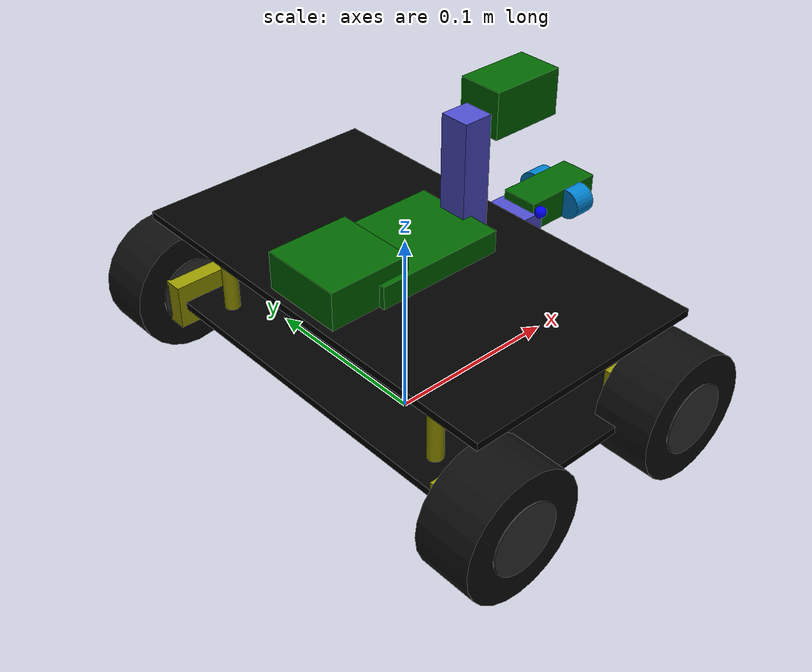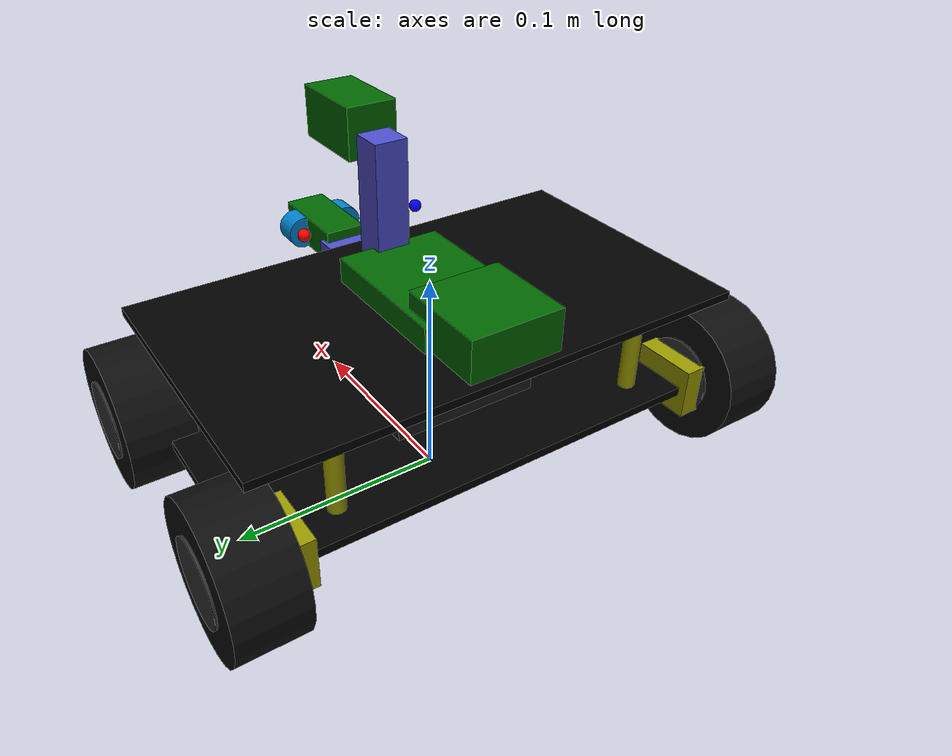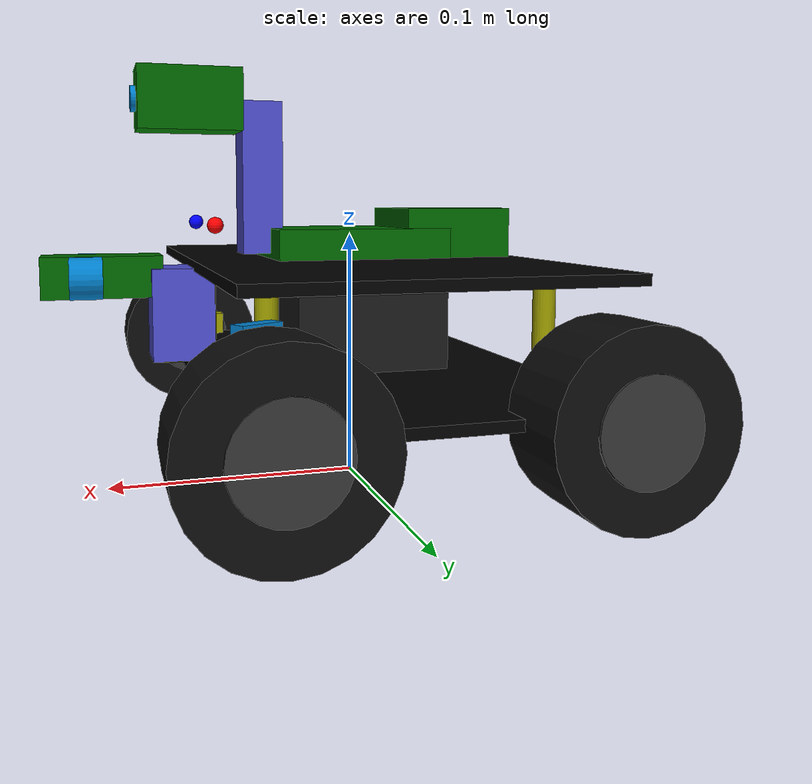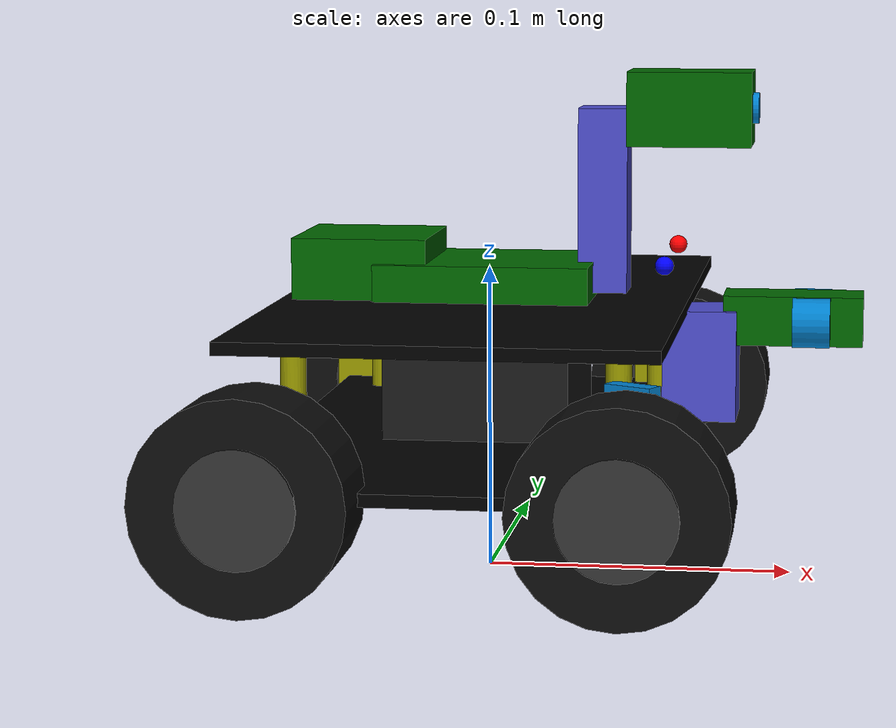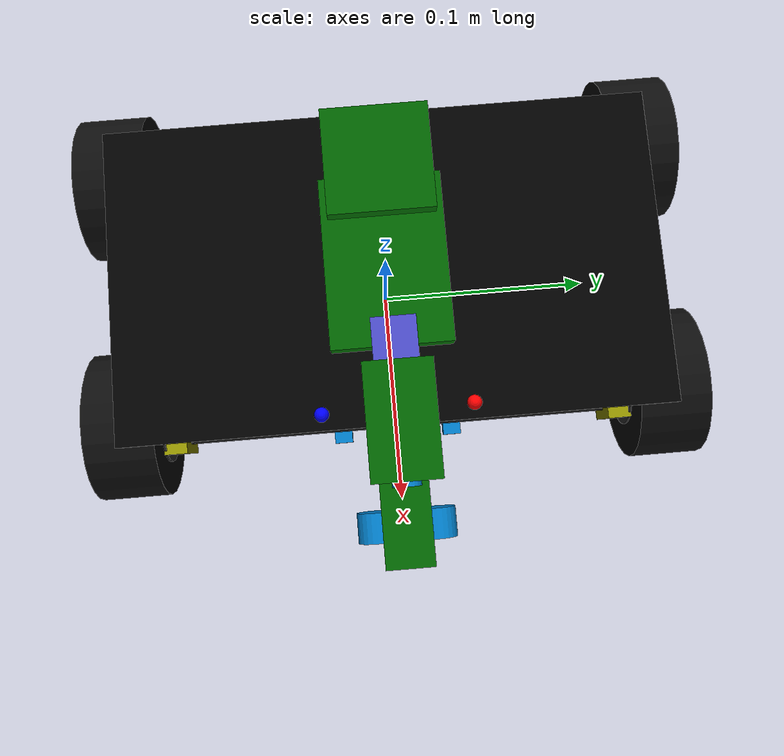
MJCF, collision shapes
<mujoco model="elegoo_smart_car_v4">
  <!-- ELEGOO Smart Robot Car Kit V4.0 MuJoCo Model -->
  <!-- 4-wheel differential drive with ultrasonic sensor and front camera -->
  <!-- Chassis alignment derived from the ELEGOO STEP snapshot + exported STL plates -->

  <compiler angle="radian" meshdir="assets/elegoo/"/>

  <option timestep="0.002" integrator="implicit" cone="elliptic" impratio="10">
    <flag warmstart="enable"/>
  </option>

  <asset>
    <!-- Materials -->
    <material name="chassis_mat" rgba="0.1 0.1 0.1 1.0" specular="0.3" shininess="0.3"/>
    <material name="wheel_mat" rgba="0.2 0.2 0.2 1.0" specular="0.1" shininess="0.1"/>
    <material name="tire_mat" rgba="0.05 0.05 0.05 1.0" specular="0.0" shininess="0.0"/>
    <material name="motor_mat" rgba="0.6 0.6 0.0 1.0" specular="0.2" shininess="0.2"/>
    <material name="sensor_mat" rgba="0.0 0.5 0.8 1.0" specular="0.4" shininess="0.4"/>
    <material name="servo_mat" rgba="0.3 0.3 0.8 1.0" specular="0.2" shininess="0.2"/>
    <material name="pcb_mat" rgba="0.0 0.4 0.0 1.0" specular="0.1" shininess="0.1"/>
    <material name="led_red" rgba="1.0 0.0 0.0 1.0" emission="0.5"/>
    <material name="led_blue" rgba="0.0 0.0 1.0 1.0" emission="0.5"/>

    <!-- Actual ELEGOO CAD meshes (scaled from mm to m) -->
    <!-- Note: STL origin is offset, position adjusted in geom -->
    <mesh name="bottom_plate" file="Bottom Plate.stl" scale="0.001 0.001 0.001"/>
    <mesh name="top_plate" file="Top Plate.stl" scale="0.001 0.001 0.001"/>
    <mesh name="dead_plate" file="Dead Plate.stl" scale="0.001 0.001 0.001"/>

    <!-- Acrylic plate material -->
    <material name="acrylic_black" rgba="0.05 0.05 0.05 0.9" specular="0.5" shininess="0.8"/>
  </asset>

  <default>
    <default class="elegoo_car">
      <!-- Wheel joints - continuous rotation -->
      <joint frictionloss="0.01" armature="0.001" damping="0.1"/>

      <default class="wheel_joint">
        <joint axis="0 1 0" limited="false" type="hinge"/>
      </default>

      <default class="servo_joint">
        <joint axis="0 0 1" range="-1.57 1.57" limited="true" damping="0.5"/>
      </default>

      <default class="visual">
        <geom contype="0" conaffinity="0" density="0" group="2"/>
      </default>

      <default class="collision">
        <geom group="3" friction="1.0 0.005 0.0001"/>
      </default>

      <default class="wheel_collision">
        <geom type="cylinder" friction="2.0 0.1 0.01" solimp="0.95 0.99 0.001" solref="0.005 1"/>
      </default>
    </default>
  </default>

  <worldbody>
    <!-- Main chassis body -->
    <body name="chassis" pos="0 0 0.045" childclass="elegoo_car">
      <inertial pos="0 0 0" mass="0.5" diaginertia="0.002 0.004 0.005"/>
      <freejoint name="chassis_free"/>

      <!-- Main chassis plate - ELEGOO CAD mesh -->
      <!-- STL offset: X~10mm, Y~-51mm, Z~-55mm - adjusted to center at origin -->
      <!-- Rotated 90deg around Z so Y becomes forward (matches STL orientation) -->
      <geom name="chassis_bottom_mesh" type="mesh" mesh="bottom_plate"
            pos="-0.01 0.051 0.056" euler="0 0 0"
            material="acrylic_black" class="visual"/>
      <!-- Simplified collision box for physics -->
      <geom name="chassis_bottom" type="box" size="0.066 0.115 0.002" pos="0 0 0"
            material="chassis_mat" class="collision" rgba="0 0 0 0"/>

      <!-- Upper deck - ELEGOO CAD mesh -->
      <geom name="chassis_top_mesh" type="mesh" mesh="top_plate"
            pos="-0.01 0.051 0.056" euler="0 0 0"
            material="acrylic_black" class="visual"/>
      <!-- Simplified collision box for physics -->
      <geom name="chassis_top" type="box" size="0.066 0.115 0.002" pos="0 0 0.044"
            material="chassis_mat" class="collision" rgba="0 0 0 0"/>

      <!-- Dead plate (small bracket) -->
      <geom name="dead_plate_mesh" type="mesh" mesh="dead_plate"
            pos="-0.01 0.051 0.056" euler="0 0 0"
            material="acrylic_black" class="visual"/>

      <!-- Standoffs connecting decks (adjusted for 133x231mm chassis) -->
      <geom name="standoff_fl" type="cylinder" size="0.004 0.022" pos="0.05 0.075 0.022" material="motor_mat"/>
      <geom name="standoff_fr" type="cylinder" size="0.004 0.022" pos="0.05 -0.075 0.022" material="motor_mat"/>
      <geom name="standoff_bl" type="cylinder" size="0.004 0.022" pos="-0.05 0.075 0.022" material="motor_mat"/>
      <geom name="standoff_br" type="cylinder" size="0.004 0.022" pos="-0.05 -0.075 0.022" material="motor_mat"/>

      <!-- Arduino UNO / Expansion Board (on top deck) -->
      <geom name="arduino_board" type="box" size="0.035 0.025 0.008" pos="0 0 0.05"
            material="pcb_mat" class="visual"/>

      <!-- TB6612 Motor Driver Board -->
      <geom name="motor_driver" type="box" size="0.022 0.022 0.012" pos="-0.04 0 0.054"
            material="pcb_mat" class="visual"/>

      <!-- Battery holder (4xAA or 18650 pack) -->
      <geom name="battery" type="box" size="0.03 0.035 0.015" pos="0 0 0.018"
            material="chassis_mat" class="visual"/>

      <!-- ================== MOTORS AND WHEELS ================== -->
      <!-- Adjusted for actual chassis: 133mm (X) x 231mm (Y) -->
      <!-- Wheels positioned at chassis corners with motor mounts -->

      <!-- Front Left Motor Mount + Wheel -->
      <body name="motor_fl" pos="0.055 0.09 0">
        <geom name="motor_fl_body" type="box" size="0.015 0.012 0.012" pos="0 0.015 0"
              material="motor_mat" class="visual"/>
        <body name="wheel_fl" pos="0 0.028 0">
          <inertial pos="0 0 0" mass="0.05" diaginertia="0.00002 0.00003 0.00002"/>
          <joint name="wheel_fl_joint" class="wheel_joint"/>
          <geom name="wheel_fl_geom" type="cylinder" size="0.0325 0.015"
                material="tire_mat" class="wheel_collision" euler="1.5708 0 0"/>
          <!-- Wheel hub detail -->
          <geom name="wheel_fl_hub" type="cylinder" size="0.018 0.016"
                material="wheel_mat" class="visual" euler="1.5708 0 0"/>
        </body>
      </body>

      <!-- Front Right Motor Mount + Wheel -->
      <body name="motor_fr" pos="0.055 -0.09 0">
        <geom name="motor_fr_body" type="box" size="0.015 0.012 0.012" pos="0 -0.015 0"
              material="motor_mat" class="visual"/>
        <body name="wheel_fr" pos="0 -0.028 0">
          <inertial pos="0 0 0" mass="0.05" diaginertia="0.00002 0.00003 0.00002"/>
          <joint name="wheel_fr_joint" class="wheel_joint"/>
          <geom name="wheel_fr_geom" type="cylinder" size="0.0325 0.015"
                material="tire_mat" class="wheel_collision" euler="1.5708 0 0"/>
          <geom name="wheel_fr_hub" type="cylinder" size="0.018 0.016"
                material="wheel_mat" class="visual" euler="1.5708 0 0"/>
        </body>
      </body>

      <!-- Rear Left Motor Mount + Wheel -->
      <body name="motor_bl" pos="-0.055 0.09 0">
        <geom name="motor_bl_body" type="box" size="0.015 0.012 0.012" pos="0 0.015 0"
              material="motor_mat" class="visual"/>
        <body name="wheel_bl" pos="0 0.028 0">
          <inertial pos="0 0 0" mass="0.05" diaginertia="0.00002 0.00003 0.00002"/>
          <joint name="wheel_bl_joint" class="wheel_joint"/>
          <geom name="wheel_bl_geom" type="cylinder" size="0.0325 0.015"
                material="tire_mat" class="wheel_collision" euler="1.5708 0 0"/>
          <geom name="wheel_bl_hub" type="cylinder" size="0.018 0.016"
                material="wheel_mat" class="visual" euler="1.5708 0 0"/>
        </body>
      </body>

      <!-- Rear Right Motor Mount + Wheel -->
      <body name="motor_br" pos="-0.055 -0.09 0">
        <geom name="motor_br_body" type="box" size="0.015 0.012 0.012" pos="0 -0.015 0"
              material="motor_mat" class="visual"/>
        <body name="wheel_br" pos="0 -0.028 0">
          <inertial pos="0 0 0" mass="0.05" diaginertia="0.00002 0.00003 0.00002"/>
          <joint name="wheel_br_joint" class="wheel_joint"/>
          <geom name="wheel_br_geom" type="cylinder" size="0.0325 0.015"
                material="tire_mat" class="wheel_collision" euler="1.5708 0 0"/>
          <geom name="wheel_br_hub" type="cylinder" size="0.018 0.016"
                material="wheel_mat" class="visual" euler="1.5708 0 0"/>
        </body>
      </body>

      <!-- ================== SENSORS ================== -->

      <!-- Ultrasonic Sensor Mount (Servo + HC-SR04) - at front of chassis -->
      <body name="servo_mount" pos="0.07 0 0.025">
        <geom name="servo_bracket" type="box" size="0.012 0.012 0.018" pos="0 0 0"
              material="servo_mat" class="visual"/>

        <body name="ultrasonic_head" pos="0.018 0 0.015">
          <inertial pos="0 0 0" mass="0.02" diaginertia="0.000001 0.000001 0.000001"/>
          <joint name="ultrasonic_pan" class="servo_joint"/>

          <!-- HC-SR04 Ultrasonic Sensor -->
          <geom name="ultrasonic_board" type="box" size="0.0225 0.01 0.008" pos="0.012 0 0"
                material="pcb_mat"/>
          <!-- Ultrasonic transducers (the "eyes") -->
          <geom name="ultrasonic_left" type="cylinder" size="0.008 0.006" pos="0.018 0.012 0"
                material="sensor_mat" euler="0 1.5708 0"/>
          <geom name="ultrasonic_right" type="cylinder" size="0.008 0.006" pos="0.018 -0.012 0"
                material="sensor_mat" euler="0 1.5708 0"/>

          <!-- Sensor site for raycast -->
          <site name="ultrasonic_site" pos="0.03 0 0" size="0.003" rgba="1 0 0 0.5"/>
        </body>
      </body>

      <!-- IR Line Tracking Sensors (3x on front bottom) -->
      <geom name="ir_sensor_left" type="box" size="0.006 0.004 0.003" pos="0.065 0.025 -0.012"
            material="sensor_mat"/>
      <geom name="ir_sensor_center" type="box" size="0.006 0.004 0.003" pos="0.065 0 -0.012"
            material="sensor_mat"/>
      <geom name="ir_sensor_right" type="box" size="0.006 0.004 0.003" pos="0.065 -0.025 -0.012"
            material="sensor_mat"/>

      <!-- IR sensor sites for line detection -->
      <site name="ir_left_site" pos="0.065 0.025 -0.015" size="0.002" rgba="1 0 0 0.5"/>
      <site name="ir_center_site" pos="0.065 0 -0.015" size="0.002" rgba="1 0 0 0.5"/>
      <site name="ir_right_site" pos="0.065 -0.025 -0.015" size="0.002" rgba="1 0 0 0.5"/>

      <!-- IR Obstacle Sensors (left and right sides) -->
      <geom name="ir_obstacle_left" type="box" size="0.008 0.003 0.006" pos="0.055 0.085 0.025"
            material="sensor_mat" euler="0 0 0.5"/>
      <geom name="ir_obstacle_right" type="box" size="0.008 0.003 0.006" pos="0.055 -0.085 0.025"
            material="sensor_mat" euler="0 0 -0.5"/>

      <!-- Status LEDs -->
      <geom name="led_power" type="sphere" size="0.003" pos="0.06 0.03 0.06" material="led_red"/>
      <geom name="led_status" type="sphere" size="0.003" pos="0.06 -0.03 0.06" material="led_blue"/>

      <!-- Camera module for the V4 camera variant -->
      <geom name="camera_mast" type="box" size="0.008 0.008 0.03" pos="0.038 0 0.078"
            material="servo_mat" class="visual"/>
      <geom name="camera_module" type="box" size="0.02 0.012 0.012" pos="0.066 0 0.108"
            material="pcb_mat" class="visual"/>
      <geom name="camera_lens" type="cylinder" size="0.005 0.006" pos="0.082 0 0.108"
            material="sensor_mat" class="visual" euler="0 1.5708 0"/>

      <!-- Camera for robot view -->
      <camera name="car_fpv" pos="0.082 0 0.108" xyaxes="0 -1 0 0 0 1" fovy="70"/>
      <camera name="car_top" pos="0 0 0.35" xyaxes="1 0 0 0 1 0" fovy="60"/>
      <camera name="car_rear" pos="-0.12 0 0.08" xyaxes="0 1 0 0 0 1" fovy="70"/>
    </body>
  </worldbody>

  <!-- ================== ACTUATORS ================== -->
  <!-- Differential drive: control left/right wheel velocities -->
  <actuator>
    <!-- Velocity control for wheels (simulating DC motors) -->
    <velocity name="motor_fl" joint="wheel_fl_joint" kv="0.5" forcerange="-1 1"/>
    <velocity name="motor_fr" joint="wheel_fr_joint" kv="0.5" forcerange="-1 1"/>
    <velocity name="motor_bl" joint="wheel_bl_joint" kv="0.5" forcerange="-1 1"/>
    <velocity name="motor_br" joint="wheel_br_joint" kv="0.5" forcerange="-1 1"/>

    <!-- Position control for ultrasonic servo -->
    <position name="ultrasonic_servo" joint="ultrasonic_pan" kp="5" ctrlrange="-1.57 1.57"/>
  </actuator>

  <!-- ================== SENSORS ================== -->
  <sensor>
    <!-- Wheel encoders (velocity sensing) -->
    <jointvel name="encoder_fl" joint="wheel_fl_joint"/>
    <jointvel name="encoder_fr" joint="wheel_fr_joint"/>
    <jointvel name="encoder_bl" joint="wheel_bl_joint"/>
    <jointvel name="encoder_br" joint="wheel_br_joint"/>

    <!-- IMU on chassis -->
    <accelerometer name="imu_accel" site="ultrasonic_site"/>
    <gyro name="imu_gyro" site="ultrasonic_site"/>

    <!-- Ultrasonic servo position -->
    <jointpos name="servo_pos" joint="ultrasonic_pan"/>
  </sensor>

  <!-- Contact exclusions -->
  <contact>
    <exclude body1="chassis" body2="motor_fl"/>
    <exclude body1="chassis" body2="motor_fr"/>
    <exclude body1="chassis" body2="motor_bl"/>
    <exclude body1="chassis" body2="motor_br"/>
    <exclude body1="chassis" body2="servo_mount"/>
  </contact>

  <!-- Keyframes for common poses -->
  <keyframe>
    <key name="home" qpos="0 0 0.045 1 0 0 0 0 0 0 0 0" ctrl="0 0 0 0 0"/>
    <key name="forward" ctrl="10 10 10 10 0"/>
    <key name="turn_left" ctrl="5 10 5 10 0"/>
    <key name="turn_right" ctrl="10 5 10 5 0"/>
    <key name="scan_left" ctrl="0 0 0 0 1.57"/>
    <key name="scan_right" ctrl="0 0 0 0 -1.57"/>
  </keyframe>
</mujoco>
